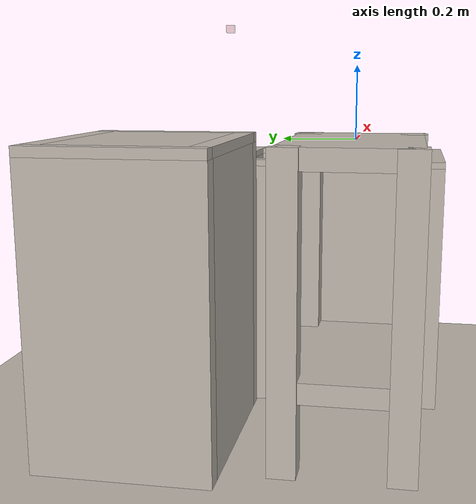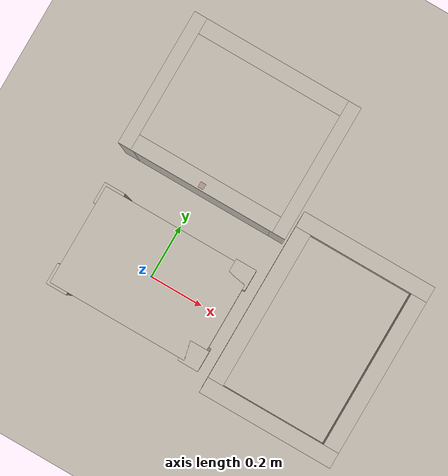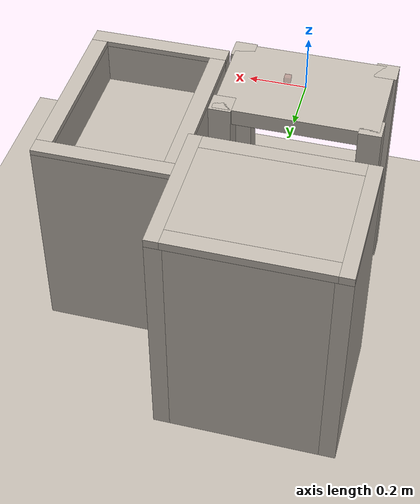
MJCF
<mujoco>
    <compiler angle="radian" texturedir="../textures" autolimits="true"/>
    <option timestep='0.0025' iterations="50" tolerance="1e-10" solver="Newton" jacobian="dense" cone="elliptic"/>

    <asset>
        <texture type="skybox" builtin="gradient" rgb1=".50 .495 .48" rgb2=".50 .495 .48" width="32" height="32"/>
        <texture name="T_floor" type="2d" file="floor2.png"/>
        <texture name="metal"        type="cube"     file="metal4.png"/>

        <texture name="warning1" type="2d" file="warning1.png"/>
        <texture name="warning2" type="2d" file="warning2.png"/>
        <material name="basic_floor" texture="T_floor" texrepeat="12 12" shininess=".1" specular="0.5"
                  reflectance="0.2"/>

        <material name="bench_mat"      texture="metal"   shininess="0" specular="0.5" reflectance="0.2"/>
        <material name="warning_col1" texture="warning1" shininess="0" specular="0.5"/>
        <material name="warning_col2" texture="warning2" shininess="0" specular="0.5"/>
    </asset>
    <visual>
        <map fogstart="1.5" fogend="5" force="0.1" znear="0.01"/>
        <quality shadowsize="4096" offsamples="4"/>

        <headlight ambient="0.4 0.4 0.4"/>

    </visual>
    <worldbody>
        <body name="base_box" pos="0 0 -0.44">
            <geom size=".29 .19 .03" pos ="0 0 0.41" type="box" material="bench_mat"/>
            <geom size=".29 .19 .03" pos ="0 0 -0.2" type="box" material="bench_mat"/>
            <geom size=".04 .04 .44" pos =".26 .16 0" type="box" material="bench_mat"/>
            <geom size=".04 .04 .44" pos ="-.26 .16 0" type="box" material="bench_mat"/>
            <geom size=".04 .04 .44" pos =".26 -.16 0" type="box" material="bench_mat"/>
            <geom size=".04 .04 .44" pos ="-.26 -.16 0" type="box" material="bench_mat"/>
            <inertial pos="0 0 0" mass="1000" diaginertia="0 0 0" />
        </body>
        <body pos="0.0 0.6000000000000001 0.765">
            <camera name="pick_view"
                    mode="fixed"
                    focal="0.01 0.01"
                    sensorsize="0.007292 0.005208"
                    resolution="560 400"/>
        </body>
        <body name="pick_box" pos="0 0.6 -.913">
            <!-- warning_col1: 原前后边条 -->
            <geom size=".025 .26 .015" pos="0.305 0 0.895" type="box" material="warning_col2"/>
            <geom size=".025 .26 .015" pos="-0.305 0 0.895" type="box" material="warning_col2"/>

            <!-- warning_col2: 原左右边条 -->
            <geom size=".28 .03 .015" pos="0 0.23 0.895" type="box" material="warning_col1"/>
            <geom size=".28 .03 .015" pos="0 -0.23 0.895" type="box" material="warning_col1"/>

            <!-- 主平台 -->
            <geom size=".28 .2 .03" pos="0 0 0.88" type="box" material="bench_mat"/>

            <!-- 竖杆（原左右） -->
            <geom size=".27 .03 .44" pos="0 0.23 0.44" type="box" material="bench_mat"/>
            <geom size=".27 .03 .44" pos="0 -0.23 0.44" type="box" material="bench_mat"/>

            <!-- 横杆（原前后） -->
            <geom size=".03 .26 .44" pos="-0.3 0 0.44" type="box" material="bench_mat"/>
            <geom size=".03 .26 .44" pos="0.3 0 0.44" type="box" material="bench_mat"/>

            <inertial pos="0 0 0" mass="1000" diaginertia="0 0 0" />
        </body>
        <body pos="0.6000000000000001 0.1 0.5">
            <camera name="place_view"
                    mode="fixed"
                    focal="0.01 0.01"
                    sensorsize="0.005208 0.007813"
                    resolution="400 600"/>
        </body>
        <body name="drop_box" pos="0.6 0.1 -.913">
            <geom size=".26 .03 .01" pos ="0 -0.33 0.81" type="box" material="warning_col1"/>
            <geom size=".26 .03 .01" pos ="0 0.33 0.81" type="box" material="warning_col1"/>
            <geom size=".03 .3 .01" pos ="-0.23 0.0 0.81" type="box" material="warning_col2"/>
            <geom size=".03 .3 .01" pos ="0.23 0.0 0.81" type="box" material="warning_col2"/>
            <geom size=".2 .3 .03" pos ="0 0 0.615" type="box" material="bench_mat"/>
            <geom size=".03 .3 .4" pos ="0.23 0.0 0.4" type="box" material="bench_mat"/>
            <geom size=".03 .3 .4" pos ="-0.23 0.0 0.4" type="box" material="bench_mat"/>
            <geom size=".26 .03 .4" pos ="0.0 0.33 0.4" type="box" material="bench_mat"/>
            <geom size=".26 .03 .4" pos ="0.0 -0.33 0.4" type="box" material="bench_mat"/>
            <inertial pos="0 0 0" mass="1000" diaginertia="0 0 0" />
        </body>
        <geom name="floor" size="4 4 .1" pos="0 0 -.913" conaffinity="1" contype="1" type="plane" material="basic_floor"
              condim="3"/>
        <body name="mocap" pos="0 0.35 0.313" quat="0 -1 0 0"  mocap="true">
            <geom type="box" pos="0 0 0.015" size=".01 .01 .01" contype="0" conaffinity="0" rgba=".6 .3 .3 0.3"/>
        </body>
    </worldbody>
</mujoco>
